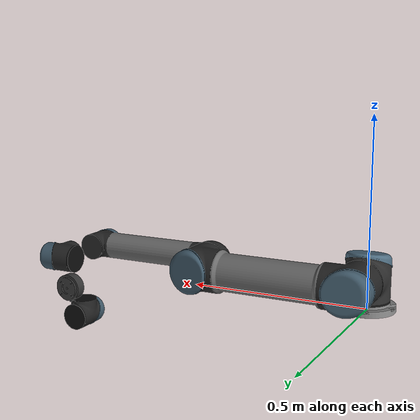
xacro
<?xml version="1.0"?>
<robot xmlns:xacro="http://www.ros.org/wiki/xacro"
       name="ur5" >

  <!-- common stuff -->
  <xacro:include filename="$(find ur_description)/urdf/gazebo.urdf.xacro" />

  <!-- ur5 -->
  <xacro:include filename="$(find ur_description)/urdf/ur5.urdf.xacro" />

  <!-- arm -->
  <xacro:ur5_robot prefix=""
                    j1_lwr_lmt="${-2.0*pi}" j1_upr_lmt="${2.0*pi}" j1_vel_lmt="3.15"
                    j2_lwr_lmt="${-2.0*pi}" j2_upr_lmt="${2.0*pi}" j2_vel_lmt="3.15"
                    j3_lwr_lmt="${-2.0*pi}" j3_upr_lmt="${2.0*pi}" j3_vel_lmt="3.15"
                    j4_lwr_lmt="${-2.0*pi}" j4_upr_lmt="${2.0*pi}" j4_vel_lmt="3.2"
                    j5_lwr_lmt="${-2.0*pi}" j5_upr_lmt="${2.0*pi}" j5_vel_lmt="3.2"
                    j6_lwr_lmt="${-2.0*pi}" j6_upr_lmt="${2.0*pi}" j6_vel_lmt="3.2"
  />

  <link name="world" />

  <joint name="world_joint" type="fixed">
    <parent link="world" />
    <child link = "base_link" />
    <origin xyz="0.0 0.0 0.0" rpy="0.0 0.0 0.0" />
  </joint>

</robot>

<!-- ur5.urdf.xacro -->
<robot xmlns:xacro="http://www.ros.org/wiki/xacro">

  <xacro:include filename="$(find ur_description)/urdf/ur5.transmission.xacro" />
  <xacro:include filename="$(find ur_description)/urdf/ur5.gazebo.xacro" />
  <xacro:include filename="$(find ur_description)/urdf/materials.urdf.xacro" />

  <property name="pi" value="3.14159265" />
  <property name="scale" value="0.001 0.001 0.001" />

  <!-- Inertia parameters -->
  <property name="base_mass" value="4.0" />  <!-- This mass might be incorrect -->
  <property name="shoulder_mass" value="3.7000" />
  <property name="upper_arm_mass" value="8.3930" />
  <property name="forearm_mass" value="2.2750" />
  <property name="wrist_1_mass" value="1.2190" />
  <property name="wrist_2_mass" value="1.2190" />
  <property name="wrist_3_mass" value="0.1879" />

  <property name="shoulder_cog" value="0.0 0.00193 -0.02561" />
  <property name="upper_arm_cog" value="0.0 -0.024201 0.2125" />
  <property name="forearm_cog" value="0.0 0.0265 0.11993" />
  <property name="wrist_1_cog" value="0.0 0.110949 0.01634" />
  <property name="wrist_2_cog" value="0.0 0.0018 0.11099" />
  <property name="wrist_3_cog" value="0.0 0.001159 0.0" />

  <!-- Kinematic model -->
  <!-- Properties from urcontrol.conf -->
  <property name="ur5_d1" value="0.089159" />
  <property name="ur5_a2" value="-0.42500" />
  <property name="ur5_a3" value="-0.39225" />
  <property name="ur5_d4" value="0.10915" />
  <property name="ur5_d5" value="0.09465" />
  <property name="ur5_d6" value="0.0823" />

  <!-- Arbitrary offsets for shoulder/elbow joints -->
  <property name="shoulder_offset" value="0.13585" />  <!-- measured from model -->
  <property name="elbow_offset" value="-0.1197" /> <!-- measured from model -->

  <!-- link lengths used in model -->
  <property name="shoulder_height" value="${ur5_d1}" />
  <property name="upper_arm_length" value="${-ur5_a2}" />
  <property name="forearm_length" value="${-ur5_a3}" />
  <property name="wrist_1_length" value="${ur5_d4 - elbow_offset - shoulder_offset}" />
  <property name="wrist_2_length" value="${ur5_d5}" />
  <property name="wrist_3_length" value="${ur5_d6}" />
  <!--property name="shoulder_height" value="0.089159" /-->
  <!--property name="shoulder_offset" value="0.13585" /-->  <!-- shoulder_offset - elbow_offset + wrist_1_length = 0.10915 -->
  <!--property name="upper_arm_length" value="0.42500" /-->
  <!--property name="elbow_offset" value="0.1197" /-->       <!-- CAD measured -->
  <!--property name="forearm_length" value="0.39225" /-->
  <!--property name="wrist_1_length" value="0.093" /-->     <!-- CAD measured -->
  <!--property name="wrist_2_length" value="0.09465" /-->   <!-- In CAD this distance is 0.930, but in the spec it is 0.09465 -->
  <!--property name="wrist_3_length" value="0.0823" /-->

  <property name="shoulder_radius" value="0.060" />   <!-- manually measured -->
  <property name="upper_arm_radius" value="0.054" />  <!-- manually measured -->
  <property name="elbow_radius" value="0.060" />      <!-- manually measured -->
  <property name="forearm_radius" value="0.040" />    <!-- manually measured -->
  <property name="wrist_radius" value="0.045" />      <!-- manually measured -->

  <xacro:macro name="cylinder_inertial" params="radius length mass *origin">
    <inertial>
      <mass value="${mass}" />
      <insert_block name="origin" />
      <inertia ixx="${0.0833333 * mass * (3 * radius * radius + length * length)}" ixy="0.0" ixz="0.0"
        iyy="${0.0833333 * mass * (3 * radius * radius + length * length)}" iyz="0.0"
        izz="${0.5 * mass * radius * radius}" />
    </inertial>
  </xacro:macro>

  <xacro:macro name="ur5_robot" params="prefix j1_lwr_lmt j1_upr_lmt j1_vel_lmt j2_lwr_lmt j2_upr_lmt j2_vel_lmt j3_lwr_lmt j3_upr_lmt j3_vel_lmt j4_lwr_lmt j4_upr_lmt j4_vel_lmt j5_lwr_lmt j5_upr_lmt j5_vel_lmt j6_lwr_lmt j6_upr_lmt j6_vel_lmt">

    <link name="${prefix}base_link" >
      <visual>
        <geometry>
          <mesh filename="package://ur_description/meshes/ur5/visual/Base.dae" />
        </geometry>
        <origin xyz="0.0 0.0 0.003" rpy="0.0 0.0 ${3.0 * pi / 4.0}" />
      </visual>
      <collision>
        <geometry>
          <mesh filename="package://ur_description/meshes/ur5/collision/Base.dae" />
        </geometry>
      </collision>
      <xacro:cylinder_inertial radius="0.06" length="0.05" mass="${base_mass}">
        <origin xyz="0.0 0.0 0.0" rpy="0 0 0" />
      </xacro:cylinder_inertial>
    </link>

    <joint name="${prefix}shoulder_pan_joint" type="revolute">
      <parent link="${prefix}base_link" />
      <child link = "${prefix}shoulder_link" />
      <origin xyz="0.0 0.0 ${shoulder_height}" rpy="0.0 0.0 0.0" />
      <axis xyz="0 0 1" />
        <limit lower="${j1_lwr_lmt}" upper="${j1_upr_lmt}" effort="150.0" velocity="${j1_vel_lmt}"/>
      <dynamics damping="0.0" friction="0.0"/>
    </joint>

    <link name="${prefix}shoulder_link">
      <visual>
        <geometry>
          <mesh filename="package://ur_description/meshes/ur5/visual/Shoulder.dae" />
        </geometry>
      </visual>
      <collision>
        <geometry>
          <mesh filename="package://ur_description/meshes/ur5/collision/Shoulder.dae" />
        </geometry>
      </collision>
      <xacro:cylinder_inertial radius="0.06" length="0.15" mass="${shoulder_mass}">
        <origin xyz="0.0 0.0 0.0" rpy="0 0 0" />
      </xacro:cylinder_inertial>
    </link>

    <joint name="${prefix}shoulder_lift_joint" type="revolute">
      <parent link="${prefix}shoulder_link" />
      <child link = "${prefix}upper_arm_link" />
      <origin xyz="0.0 ${shoulder_offset} 0.0" rpy="0.0 ${pi / 2.0} 0.0" />
      <axis xyz="0 1 0" />
        <limit lower="${j2_lwr_lmt}" upper="${j2_upr_lmt}" effort="150.0" velocity="${j2_vel_lmt}"/>
      <dynamics damping="0.0" friction="0.0"/>
    </joint>

    <link name="${prefix}upper_arm_link">
      <visual>
        <geometry>
          <mesh filename="package://ur_description/meshes/ur5/visual/UpperArm.dae" />
        </geometry>
        <origin xyz="0.0 0.0 0.0" rpy="0.0 0.0 0.0" />
      </visual>
      <collision>
        <geometry>
          <mesh filename="package://ur_description/meshes/ur5/collision/UpperArm.dae" />
        </geometry>
      </collision>
      <xacro:cylinder_inertial radius="0.06" length="0.56" mass="${upper_arm_mass}">
        <origin xyz="0.0 0.0 0.28" rpy="0 0 0" />
      </xacro:cylinder_inertial>
    </link>

    <joint name="${prefix}elbow_joint" type="revolute">
      <parent link="${prefix}upper_arm_link" />
      <child link = "${prefix}forearm_link" />
      <origin xyz="0.0 ${elbow_offset} ${upper_arm_length}" rpy="0.0 0.0 0.0" />
      <axis xyz="0 1 0" />
        <limit lower="${j3_lwr_lmt}" upper="${j3_upr_lmt}" effort="150.0" velocity="${j3_vel_lmt}"/>
      <dynamics damping="0.0" friction="0.0"/>
    </joint>

    <link name="${prefix}forearm_link">
      <visual>
        <geometry>
          <mesh filename="package://ur_description/meshes/ur5/visual/Forearm.dae" />
        </geometry>
      </visual>
      <collision>
        <geometry>
          <mesh filename="package://ur_description/meshes/ur5/collision/Forearm.dae" />
        </geometry>
      </collision>
      <xacro:cylinder_inertial radius="0.06" length="0.5" mass="${forearm_mass}">
        <origin xyz="0.0 0.0 0.25" rpy="0 0 0" />
      </xacro:cylinder_inertial>
    </link>

    <joint name="${prefix}wrist_1_joint" type="revolute">
      <parent link="${prefix}forearm_link" />
      <child link = "${prefix}wrist_1_link" />
      <origin xyz="0.0 0.0 ${forearm_length}" rpy="0.0 ${pi / 2.0} 0.0" />
      <axis xyz="0 1 0" />
        <limit lower="${j4_lwr_lmt}" upper="${j4_upr_lmt}" effort="28.0" velocity="${j4_vel_lmt}"/>
      <dynamics damping="0.0" friction="0.0"/>
    </joint>

    <link name="${prefix}wrist_1_link">
      <visual>
        <geometry>
          <mesh filename="package://ur_description/meshes/ur5/visual/Wrist1.dae" />
        </geometry>
        <origin xyz="0.0 ${wrist_1_length} 0.0" rpy="0.0 ${pi / 2.0} 0.0" />
      </visual>
      <collision>
        <geometry>
          <mesh filename="package://ur_description/meshes/ur5/collision/Wrist1.dae" />
        </geometry>
        <origin rpy="0.0 1.570796325 0.0" xyz="0.0 0.093 0.0"/>
      </collision>
      <xacro:cylinder_inertial radius="0.6" length="0.12" mass="${wrist_1_mass}">
        <origin xyz="0.0 0.0 0.0" rpy="0 0 0" />
      </xacro:cylinder_inertial>
    </link>

    <joint name="${prefix}wrist_2_joint" type="revolute">
      <parent link="${prefix}wrist_1_link" />
      <child link = "${prefix}wrist_2_link" />
      <origin xyz="0.0 ${wrist_1_length} 0.0" rpy="0.0 0.0 0.0" />
      <axis xyz="0 0 1" />
        <limit lower="${j5_lwr_lmt}" upper="${j5_upr_lmt}" effort="28.0" velocity="${j5_vel_lmt}"/>
      <dynamics damping="0.0" friction="0.0"/>
    </joint>

    <link name="${prefix}wrist_2_link">
      <visual>
        <geometry>
          <mesh filename="package://ur_description/meshes/ur5/visual/Wrist2.dae" />
        </geometry>
        <origin xyz="0.0 0.0 ${wrist_2_length}" rpy="0.0 0.0 0.0" />
      </visual>
      <collision>
        <geometry>
          <mesh filename="package://ur_description/meshes/ur5/collision/Wrist2.dae" />
        </geometry>
         <origin rpy="0.0 0.0 0.0" xyz="0.0 0.0 0.09465"/>
      </collision>
      <xacro:cylinder_inertial radius="0.6" length="0.12" mass="${wrist_2_mass}">
        <origin xyz="0.0 0.0 0.0" rpy="0 0 0" />
      </xacro:cylinder_inertial>
    </link>

    <joint name="${prefix}wrist_3_joint" type="revolute">
      <parent link="${prefix}wrist_2_link" />
      <child link = "${prefix}wrist_3_link" />
      <origin xyz="0.0 0.0 ${wrist_2_length}" rpy="0.0 0.0 0.0" />
      <axis xyz="0 1 0" />
        <limit lower="${j6_lwr_lmt}" upper="${j6_upr_lmt}" effort="28.0" velocity="${j6_vel_lmt}"/>
      <dynamics damping="0.0" friction="0.0"/>
    </joint>

    <link name="${prefix}wrist_3_link">
      <visual>
        <geometry>
          <mesh filename="package://ur_description/meshes/ur5/visual/Wrist3.dae" />
        </geometry>
      </visual>
      <collision>
        <geometry>
          <mesh filename="package://ur_description/meshes/ur5/collision/Wrist3.dae" />
        </geometry>
      </collision>
      <xacro:cylinder_inertial radius="0.6" length="0.12" mass="${wrist_3_mass}">
        <origin xyz="0.0 0.0 0.0" rpy="0 0 0" />
      </xacro:cylinder_inertial>
    </link>

    <joint name="${prefix}ee_fixed_joint" type="fixed">
      <parent link="${prefix}wrist_3_link" />
      <child link = "${prefix}ee_link" />
      <origin xyz="0.0 ${wrist_3_length} 0.0" rpy="0.0 0.0 ${pi/2.0}" />
    </joint>

    <link name="${prefix}ee_link" />

    <xacro:ur5_arm_transmission prefix="${prefix}" />
    <xacro:ur5_arm_gazebo prefix="${prefix}" />

  </xacro:macro>
</robot>
